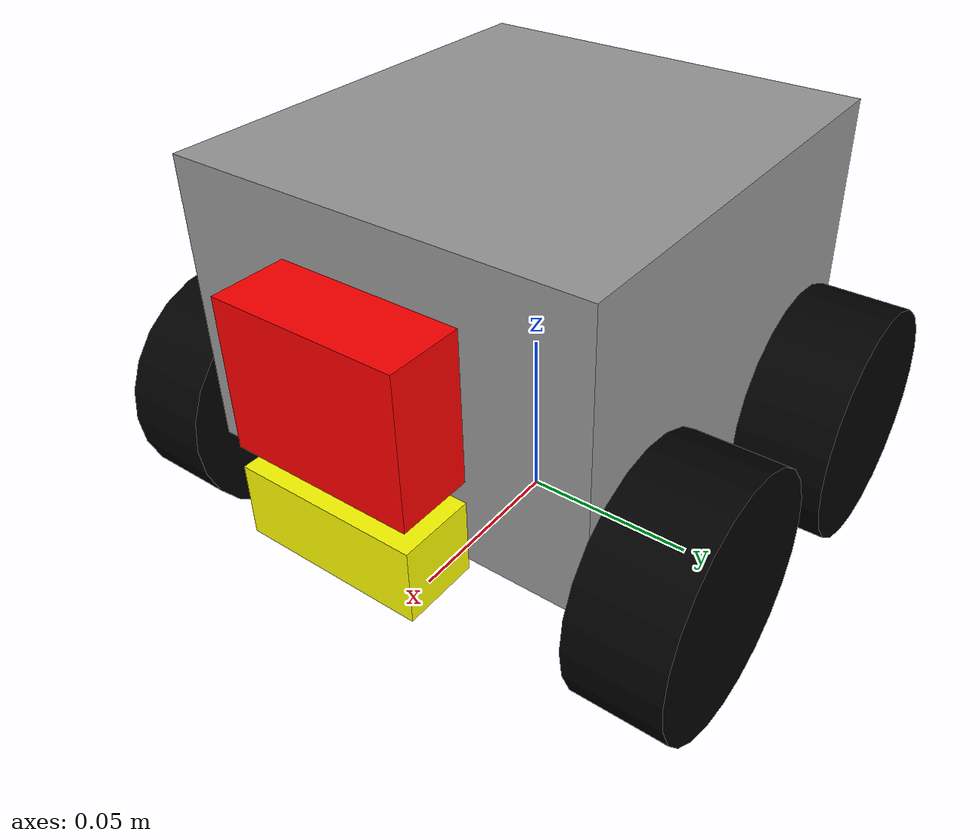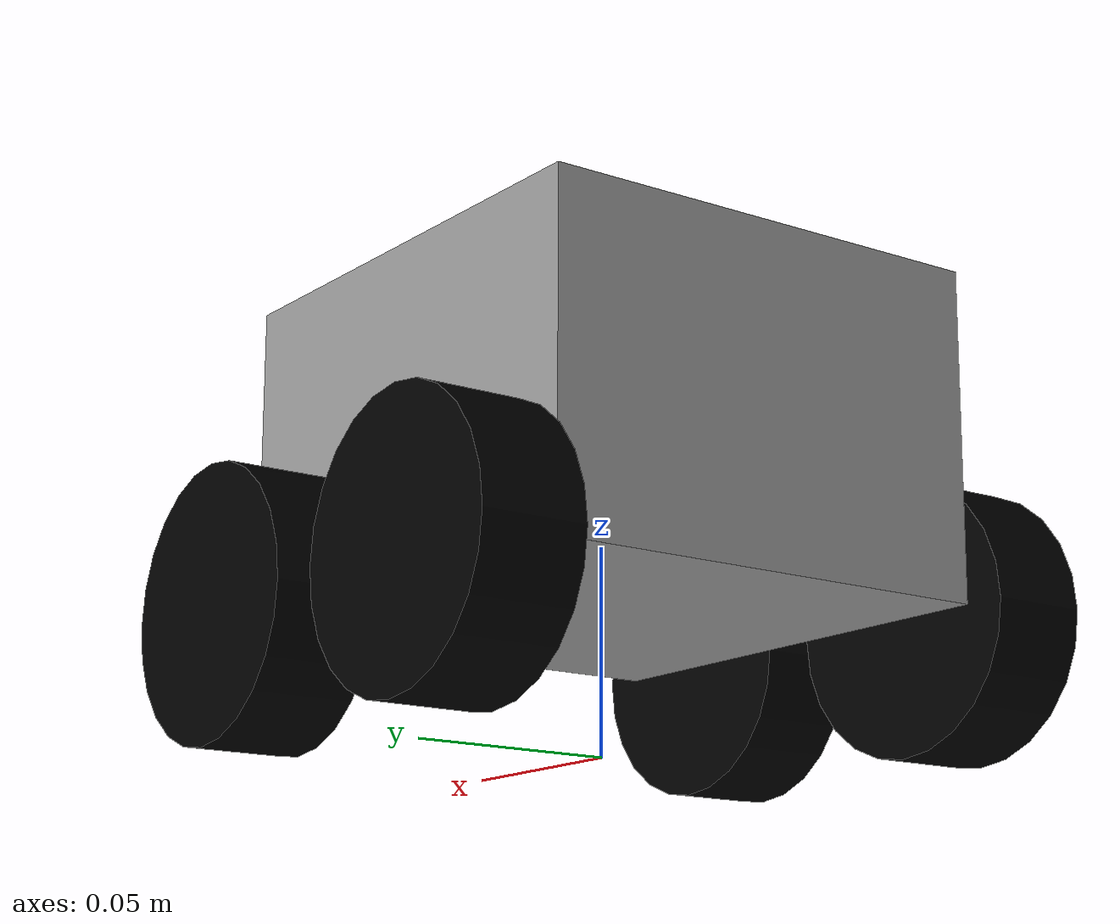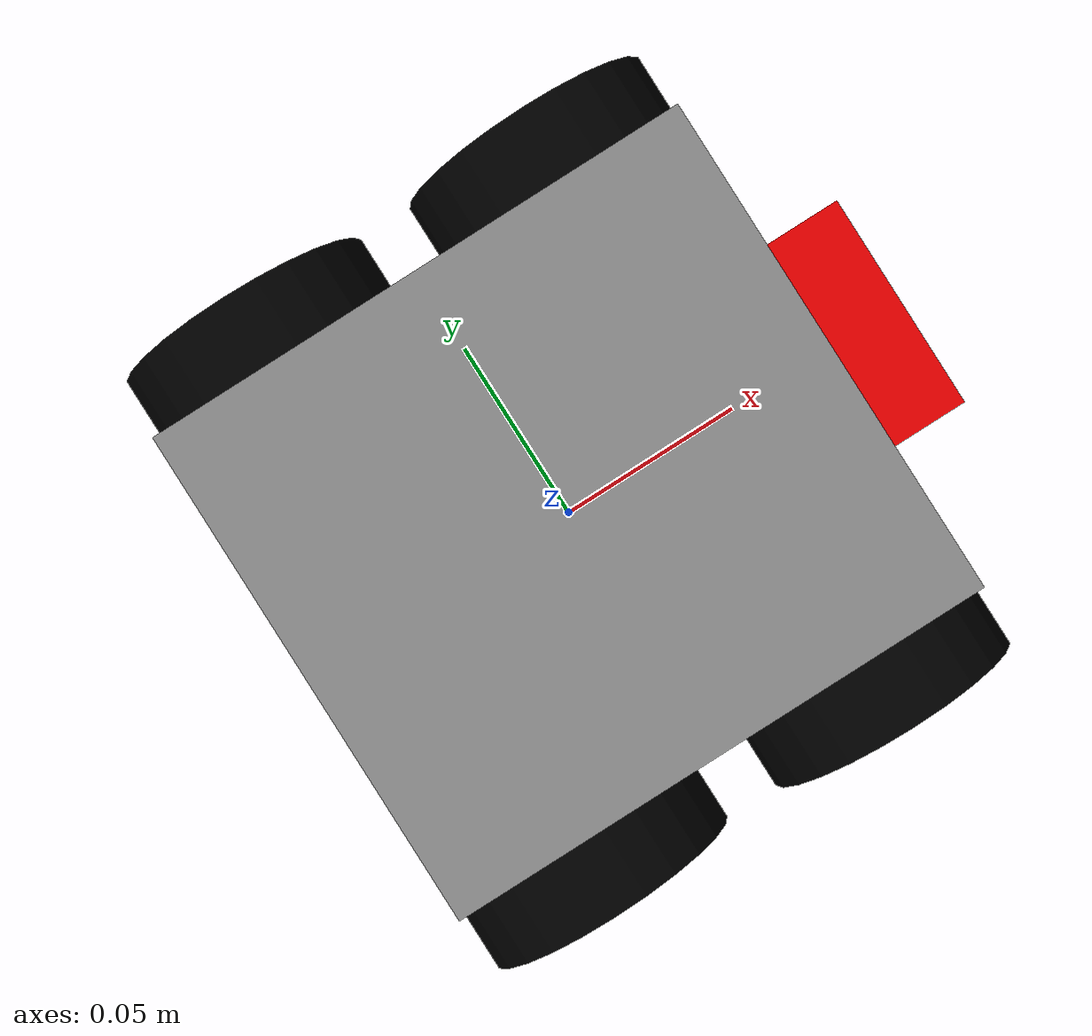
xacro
<?xml version="1.0"?>
<robot name="simple_bot" xmlns:xacro="http://www.ros.org/wiki/xacro">

  <!-- ===================== 파라미터 ===================== -->
  <xacro:property name="wheel_radius" value="0.033"/>
  <xacro:property name="wheel_width" value="0.025"/>
  <xacro:property name="body_length" value="0.125"/>
  <xacro:property name="body_width" value="0.115"/>
  <xacro:property name="body_height" value="0.08"/>
  <xacro:property name="wheel_base" value="0.08"/>

  <!-- ===================== Base Link ===================== -->
  <link name="base_link">
    <inertial>
      <mass value="1.0"/>
      <inertia ixx="0.001" iyy="0.001" izz="0.001" ixy="0.0" ixz="0.0" iyz="0.0"/>
    </inertial>
    <visual>
      <geometry>
        <box size="${body_length} ${body_width} ${body_height}"/>
      </geometry>
      <origin xyz="0 0 ${wheel_radius + body_height/2}" rpy="0 0 0"/>
      <material name="Gray">
        <color rgba="0.6 0.6 0.6 1.0"/>
        <!-- Gazebo에서 동일하게 보이도록 추가 -->
        <ambient>0.6 0.6 0.6 1.0</ambient>
        <diffuse>0.6 0.6 0.6 1.0</diffuse>
        <specular>0.1 0.1 0.1 1.0</specular>
        <emissive>0.0 0.0 0.0 1.0</emissive>
      </material>
    </visual>
    <collision>
      <geometry>
        <box size="${body_length} ${body_width} ${body_height}"/>
      </geometry>
      <origin xyz="0 0 ${wheel_radius + body_height/2}" rpy="0 0 0"/>
    </collision>
  </link>

  <!-- ===================== Wheels ===================== -->
  <!-- odom 프레임 정의 -->
    <link name="odom"/>

  <!-- odom → base_link 변환 -->
  <joint name="odom_to_base" type="fixed">
    <parent link="odom"/>
    <child link="base_link"/>
    <origin xyz="0 0 0" rpy="0 0 0"/>
  </joint>

  <!-- ===================== Wheels ===================== -->
  <xacro:macro name="wheel_link" params="wheel_name x y">
    <link name="${wheel_name}_link">
      <inertial>
        <mass value="0.2"/>
        <inertia ixx="0.000056" iyy="0.000056" izz="0.00009" ixy="0.0" ixz="0.0" iyz="0.0"/>
      </inertial>
      <visual>
        <geometry>
          <cylinder radius="${wheel_radius}" length="${wheel_width}"/>
        </geometry>
        <origin xyz="0 0 0" rpy="1.5708 0 0"/>
        <material name="Black">
          <color rgba="0 0 0 1"/>
        </material>
      </visual>
      <collision>
        <geometry>
          <cylinder radius="${wheel_radius}" length="${wheel_width}"/>
        </geometry>
        <origin xyz="0 0 0" rpy="1.5708 0 0"/>
      </collision>
    </link>
    <joint name="${wheel_name}_joint" type="continuous">
      <parent link="base_link"/>
      <child link="${wheel_name}_link"/>
      <origin xyz="${x} ${y} ${wheel_radius}" rpy="0 0 0"/>
      <axis xyz="0 1 0"/>
    </joint>
  </xacro:macro>

  <!-- Left Wheels -->
  <xacro:wheel_link wheel_name="left_front_wheel" x="${wheel_base/2}" y="${body_width/2 + wheel_width/2}"/>
  <xacro:wheel_link wheel_name="left_rear_wheel" x="-${wheel_base/2}" y="${body_width/2 + wheel_width/2}"/>

  <!-- Right Wheels -->
  <xacro:wheel_link wheel_name="right_front_wheel" x="${wheel_base/2}" y="-${body_width/2 + wheel_width/2}"/>
  <xacro:wheel_link wheel_name="right_rear_wheel" x="-${wheel_base/2}" y="-${body_width/2 + wheel_width/2}"/>

  <!-- ===================== ros2_control ===================== -->
  <ros2_control name="GazeboSystem" type="system">
    <hardware>
      <plugin>gz_ros2_control/GazeboSystem</plugin>
    </hardware>

    <!-- 각 바퀴 joint 정의 -->
    <joint name="left_front_wheel_joint">
      <command_interfaces>
        <interface>velocity</interface>
      </command_interfaces>
      <state_interfaces>
        <interface>position</interface>
        <interface>velocity</interface>
      </state_interfaces>
    </joint>

    <joint name="left_rear_wheel_joint">
      <command_interfaces>
        <interface>velocity</interface>
      </command_interfaces>
      <state_interfaces>
        <interface>position</interface>
        <interface>velocity</interface>
      </state_interfaces>
    </joint>

    <joint name="right_front_wheel_joint">
      <command_interfaces>
        <interface>velocity</interface>
      </command_interfaces>
      <state_interfaces>
        <interface>position</interface>
        <interface>velocity</interface>
      </state_interfaces>
    </joint>

    <joint name="right_rear_wheel_joint">
      <command_interfaces>
        <interface>velocity</interface>
      </command_interfaces>
      <state_interfaces>
        <interface>position</interface>
        <interface>velocity</interface>
      </state_interfaces>
    </joint>
  </ros2_control>

  <!-- ===================== Ultrasonic Sensor ===================== -->
  <link name="ultrasonic_link">
    <visual>
      <geometry>
        <box size="0.02 0.05 0.02"/>
      </geometry>
      <material name="Yellow">
        <color rgba="1 1 0 1"/>
      </material>
    </visual>
  </link>
  <joint name="ultrasonic_joint" type="fixed">
    <parent link="base_link"/>
    <child link="ultrasonic_link"/>
    <origin xyz="${(body_length/2) + 0.01} 0 ${body_height/4 + 0.02}" rpy="0 0 0"/>
  </joint>

  <!-- ===================== Camera ===================== -->
  <link name="camera_link">
    <visual>
      <geometry>
        <box size="0.02 0.05 0.04"/>
      </geometry>
      <material name="Red">
        <color rgba="1 0 0 1"/>
      </material>
    </visual>
  </link>
  <joint name="camera_joint" type="fixed">
    <parent link="base_link"/>
    <child link="camera_link"/>
    <origin xyz="${(body_length/2) + 0.01} 0 ${body_height*0.7 + 0.02}" rpy="0 0 0"/>
  </joint>
  <plugin name="gz_ros2_control" filename="libgz_ros2_control-system.so">
    <parameters>/home/pi/ros2_ws_forpc/config/diff_drive_controller.yaml</parameters>
  </plugin>
</robot>
